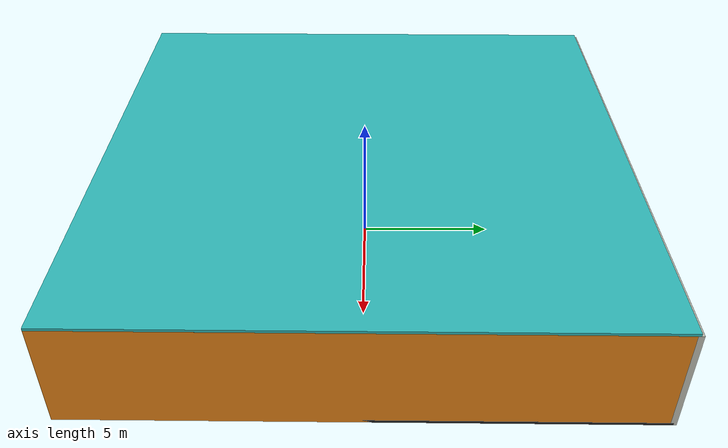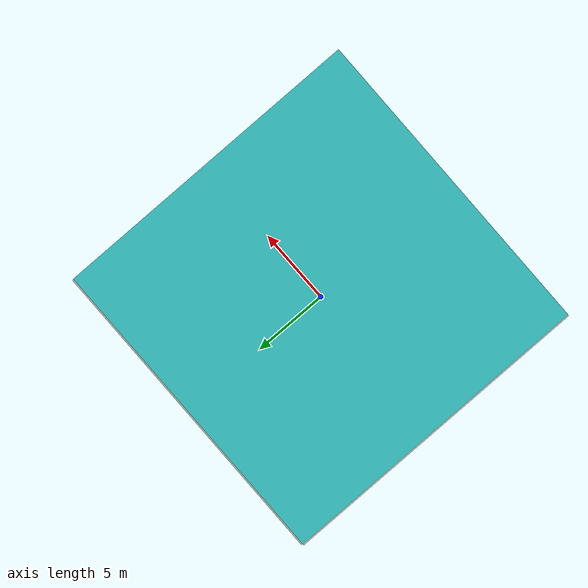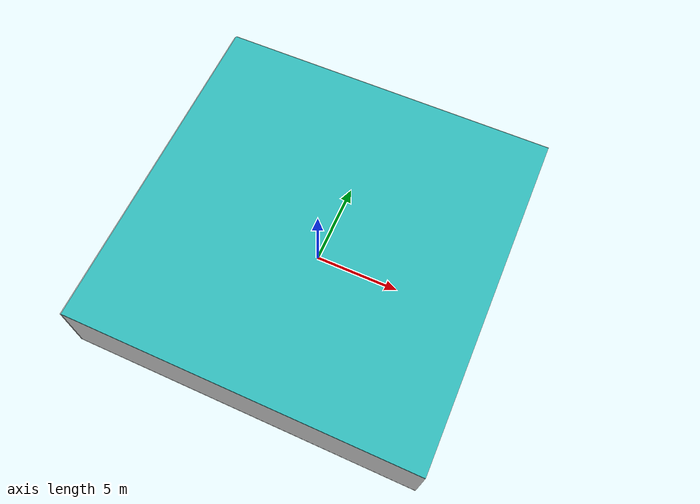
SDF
<sdf version="1.4">
 <world name="default">
  <physics type="ode">
   <max_step_size>0.001</max_step_size>
   <real_time_factor>1</real_time_factor>
   <real_time_update_rate>1000</real_time_update_rate>
   <gravity>0 0 -9.8</gravity>
  </physics>
  <scene><ambient>0.4 0.4 0.4 1</ambient><background>0.7 0.7 0.7 1</background><shadows>1</shadows></scene>
  <model name="Surrounding">
   <static>1</static>
   <link name="Ceiling">
    <collision name="Ceiling_Collision"><geometry><box><size>20 20 0.1</size></box></geometry></collision>
    <visual name="Ceiling_Visual">
     <geometry><box><size>20 20 0.1</size></box></geometry>
     <material>
      <script>
       <uri>file://media/materials/scripts/gazebo.material</uri>
       <name>Gazebo/TurquoiseGlowOutline</name>
      </script>
     </material>
    </visual>
    <pose>0 0 4.05 0 0 0</pose>
   </link>
   <link name="Wall_South">
    <collision name="Wall_South_Collision">
     <geometry><box><size>20 0 4</size></box></geometry>
     <pose>0 0 2 0 -0 0</pose>
    </collision>
    <visual name="Wall_South_Visual">
     <pose>0 0 2 0 -0 0</pose>
     <geometry><box><size>20 0 4</size></box></geometry>
     <material>
      <script><uri>file://media/materials/scripts/gazebo.material</uri><name>Gazebo/Pioneer2Body</name></script>
     </material>
    </visual>
    <velocity_decay><linear>0</linear><angular>0</angular></velocity_decay>
    <pose>0 -10 0 0 -0 0</pose>
   </link>
   <link name="Wall_East">
    <collision name="Wall_21_Collision">
     <geometry><box><size>20 0 4</size></box></geometry>
     <pose>0 0 2 0 -0 0</pose>
    </collision>
    <visual name="Wall_21_Visual">
     <pose>0 0 2 0 -0 0</pose>
     <geometry><box><size>20 0 4</size></box></geometry>
     <material>
      <script><uri>file://media/materials/scripts/gazebo.material</uri><name>Gazebo/Orange</name></script>
     </material>
    </visual>
    <velocity_decay><linear>0</linear><angular>0</angular></velocity_decay>
    <pose>10 0 0 0 -0 1.5708</pose>
   </link>
   <link name="Wall_North">
    <collision name="Wall_22_Collision">
     <geometry><box><size>20 0.2 4</size></box></geometry>
     <pose>0 0 2 0 -0 0</pose>
    </collision>
    <visual name="Wall_22_Visual">
     <pose>0 0 2 0 -0 0</pose>
     <geometry><box><size>20 0.2 4</size></box></geometry>
     <material>
      <script><uri>file://media/materials/scripts/gazebo.material</uri><name>Gazebo/PaintedWall</name></script>
     </material>
    </visual>
    <velocity_decay><linear>0</linear><angular>0</angular></velocity_decay>
    <pose>0 10 0 0 -0 0</pose>
   </link>
   <link name="Wall_West">
    <collision name="Wall_23_Collision">
     <geometry><box><size>20 0.2 4</size></box></geometry>
     <pose>0 0 2 0 -0 0</pose>
    </collision>
    <visual name="Wall_23_Visual">
     <pose>0 0 2 0 -0 0</pose>
     <geometry><box><size>20 0.2 4</size></box></geometry>
     <material>
      <script><uri>file://media/materials/scripts/gazebo.material</uri><name>Gazebo/Pioneer2Body</name></script>
     </material>
    </visual>
    <velocity_decay><linear>0</linear><angular>0</angular></velocity_decay>
    <pose>-10 0 0 0 0 -1.5708</pose>
   </link>
   <link name="Ground_link">
    <collision name="collision">
     <pose>0 0 .05 0 -0 0</pose>
     <geometry><box><size>20 20 0.1</size></box></geometry>
    </collision>
    <visual name="visual">
     <pose>0 0 .05 0 -0 0</pose>
     <geometry><box><size>20 20 0.1</size></box></geometry>
     <material>
      <script><uri>file://media/materials/scripts/gazebo.material</uri><name>Gazebo/FlatBlack</name></script>
     </material>
    </visual>
   </link>
   <static>1</static>
  </model>
  <spherical_coordinates>
   <surface_model>EARTH_WGS84</surface_model>
   <latitude_deg>0</latitude_deg>
   <longitude_deg>0</longitude_deg>
   <elevation>0</elevation>
   <heading_deg>0</heading_deg>
  </spherical_coordinates>
  <light name="lightball_0" type="diffuse">
   <diffuse>0.8 0.8 0.8 1</diffuse>
   <specular>0.2 0.2 0.2 1</specular>
   <attenuation>
    <range>100</range>
    <constant>0.7</constant>
    <linear>0.01</linear>
    <quadratic>0.001</quadratic>
   </attenuation>
   <direction>-0.5 0.1 -0.9</direction>
   <pose>-9.71646675159 0.525448798977 2.95556073763 0 0 0</pose>
  </light>
  <light name="lightball_1" type="diffuse">
   <diffuse>0.8 0.8 0.8 1</diffuse>
   <specular>0.2 0.2 0.2 1</specular>
   <attenuation>
    <range>100</range>
    <constant>0.7</constant>
    <linear>0.01</linear>
    <quadratic>0.001</quadratic>
   </attenuation>
   <direction>-0.5 0.1 -0.9</direction>
   <pose>9.50164242461 6.83840680239 3.1340298624 0 0 0</pose>
  </light>
  <light name="lightball_2" type="diffuse">
   <diffuse>0.8 0.8 0.8 1</diffuse>
   <specular>0.2 0.2 0.2 1</specular>
   <attenuation>
    <range>100</range>
    <constant>0.7</constant>
    <linear>0.01</linear>
    <quadratic>0.001</quadratic>
   </attenuation>
   <direction>-0.5 0.1 -0.9</direction>
   <pose>8.71798793544 -2.95993677237 1.70500948245 0 0 0</pose>
  </light>
  <light name="lightball_3" type="diffuse">
   <diffuse>0.8 0.8 0.8 1</diffuse>
   <specular>0.2 0.2 0.2 1</specular>
   <attenuation>
    <range>100</range>
    <constant>0.7</constant>
    <linear>0.01</linear>
    <quadratic>0.001</quadratic>
   </attenuation>
   <direction>-0.5 0.1 -0.9</direction>
   <pose>-3.46633447205 9.89292226545 2.30078203744 0 0 0</pose>
  </light>
  <light name="lightball_4" type="diffuse">
   <diffuse>0.8 0.8 0.8 1</diffuse>
   <specular>0.2 0.2 0.2 1</specular>
   <attenuation>
    <range>100</range>
    <constant>0.7</constant>
    <linear>0.01</linear>
    <quadratic>0.001</quadratic>
   </attenuation>
   <direction>-0.5 0.1 -0.9</direction>
   <pose>-8.81952442183 -7.32443198987 2.22842074116 0 0 0</pose>
  </light>
  <light name="lightball_5" type="diffuse">
   <diffuse>0.8 0.8 0.8 1</diffuse>
   <specular>0.2 0.2 0.2 1</specular>
   <attenuation>
    <range>100</range>
    <constant>0.7</constant>
    <linear>0.01</linear>
    <quadratic>0.001</quadratic>
   </attenuation>
   <direction>-0.5 0.1 -0.9</direction>
   <pose>8.64837911413 -6.9519295532 1.01509934038 0 0 0</pose>
  </light>
  <light name="lightball_6" type="diffuse">
   <diffuse>0.8 0.8 0.8 1</diffuse>
   <specular>0.2 0.2 0.2 1</specular>
   <attenuation>
    <range>100</range>
    <constant>0.7</constant>
    <linear>0.01</linear>
    <quadratic>0.001</quadratic>
   </attenuation>
   <direction>-0.5 0.1 -0.9</direction>
   <pose>-3.27585997014 -5.69365980459 1.23143479744 0 0 0</pose>
  </light>
  <light name="lightball_7" type="diffuse">
   <diffuse>0.8 0.8 0.8 1</diffuse>
   <specular>0.2 0.2 0.2 1</specular>
   <attenuation>
    <range>100</range>
    <constant>0.7</constant>
    <linear>0.01</linear>
    <quadratic>0.001</quadratic>
   </attenuation>
   <direction>-0.5 0.1 -0.9</direction>
   <pose>4.14996255546 -1.65331628748 2.34334604681 0 0 0</pose>
  </light>
  <light name="lightball_8" type="diffuse">
   <diffuse>0.8 0.8 0.8 1</diffuse>
   <specular>0.2 0.2 0.2 1</specular>
   <attenuation>
    <range>100</range>
    <constant>0.7</constant>
    <linear>0.01</linear>
    <quadratic>0.001</quadratic>
   </attenuation>
   <direction>-0.5 0.1 -0.9</direction>
   <pose>-7.29573425569 -1.40471187999 1.23340949737 0 0 0</pose>
  </light>
  <light name="lightball_9" type="diffuse">
   <diffuse>0.8 0.8 0.8 1</diffuse>
   <specular>0.2 0.2 0.2 1</specular>
   <attenuation>
    <range>100</range>
    <constant>0.7</constant>
    <linear>0.01</linear>
    <quadratic>0.001</quadratic>
   </attenuation>
   <direction>-0.5 0.1 -0.9</direction>
   <pose>-7.49761804406 2.36718477672 2.30354975541 0 0 0</pose>
  </light>
  <include>
   <uri>model://construction_cone</uri>
   <pose>-6.49010193401 -7.28253567646 0 0 0 2.73435486838</pose>
  </include>
  <include>
   <uri>model://textured_shapes</uri>
   <pose>-7.12681562009 2.12871489703 0 0 0 0.765961794954</pose>
  </include>
  <include>
   <uri>model://construction_cone</uri>
   <pose>-3.66906688461 -6.62943524281 0 0 0 1.49390884993</pose>
  </include>
  <include>
   <uri>model://robocup_3Dsim_goal</uri>
   <pose>-4.10848870299 -0.921890523716 0 0 0 1.66702726989</pose>
  </include>
  <include><uri>model://cabinet</uri><pose>2.66698790305 -3.5210437524 0 0 0 1.56949202331</pose></include>
  <include><uri>model://table</uri><pose>4.47560636435 2.09617843192 0 0 0 1.82342304536</pose></include>
 </world>
</sdf>

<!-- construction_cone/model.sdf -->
<sdf version="1.5">
  <model name="Construction Cone">
    <link name="link">
      <collision name="collision">
        <geometry>
          <mesh>
            <scale>10 10 10</scale>
            <uri>file://isr-testbed/construction_cone/meshes/construction_cone.dae</uri>
          </mesh>
        </geometry>
      </collision>
      <visual name="visual">
        <geometry>
          <mesh>
            <scale>10 10 10</scale>
            <uri>file://isr-testbed/construction_cone/meshes/construction_cone.dae</uri>
          </mesh>
        </geometry>
      </visual>
    </link>
  </model>
</sdf>

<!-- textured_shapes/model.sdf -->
<sdf version="1.6">
  <model name="textured_shapes">
    <pose>0 0 0.5 0 0 0</pose>
    <link name="box">
      <pose>0 -1.5 0 0 0 0</pose>
      <collision name="collision">
        <geometry>
          <box>
            <size>1 1 1</size>
          </box>
        </geometry>
      </collision>
      <visual name="visual">
        <geometry>
          <box>
            <size>1 1 1</size>
          </box>
        </geometry>
        <material>
          <script>
            <uri>model://../model_source/models/textured_shapes/materials/scripts</uri>
            <uri>model://../model_source/models/textured_shapes/materials/textures</uri>
            <name>TexturedShape/Squares</name>
          </script>
        </material>
      </visual>
    </link>
    <link name="sphere">
      <collision name="collision">
        <geometry>
          <sphere>
            <radius>0.5</radius>
          </sphere>
        </geometry>
      </collision>
      <visual name="visual">
        <geometry>
          <sphere>
            <radius>0.5</radius>
          </sphere>
        </geometry>
        <material>
          <script>
            <uri>model://../model_source/models/textured_shapes/materials/scripts</uri>
            <uri>model://../model_source/models/textured_shapes/materials/textures</uri>
            <name>TexturedShape/Squares</name>
          </script>
        </material>
      </visual>
    </link>
    <link name="cylinder">
      <pose>0 1.5 0 0 0 0</pose>
      <collision name="collision">
        <geometry>
          <cylinder>
            <radius>0.5</radius>
            <length>1</length>
          </cylinder>
        </geometry>
      </collision>
      <visual name="visual">
        <geometry>
          <cylinder>
            <radius>0.5</radius>
            <length>1</length>
          </cylinder>
        </geometry>
        <material>
          <script>
            <uri>model://../model_source/models/textured_shapes/materials/scripts</uri>
            <uri>model://../model_source/models/textured_shapes/materials/textures</uri>
            <name>TexturedShape/Squares</name>
          </script>
        </material>
      </visual>
    </link>
  </model>
</sdf>

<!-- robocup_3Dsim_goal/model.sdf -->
<sdf version="1.5">
  <model name="robocup_3d_goal">
    <static>true</static>
    <link name="left_post">
      <pose>0 1.05 0.45 0 0 0</pose>
      <collision name="collision">
        <geometry>
          <cylinder>
            <radius>0.05</radius>
            <length>0.9</length>
          </cylinder>
        </geometry>
      </collision>
      <visual name="visual">
        <geometry>
          <cylinder>
            <radius>0.05</radius>
            <length>0.9</length>
          </cylinder>
        </geometry>
        <material>
          <script>
            <uri>file://media/materials/scripts/gazebo.material</uri>
            <name>Gazebo/ZincYellow</name>
          </script>
        </material>
      </visual>
    </link>
    <link name="left_support_horiz_lower">
      <pose>0.30 1.05 0.01 0 0 0</pose>
      <collision name="collision">
        <geometry>
          <box>
            <size>0.50 0.02 0.02</size>
          </box>
        </geometry>
      </collision>
      <visual name="visual">
        <geometry>
          <box>
            <size>0.50 0.02 0.02</size>
          </box>
        </geometry>
        <material>
          <script>
            <uri>file://media/materials/scripts/gazebo.material</uri>
            <name>Gazebo/White</name>
          </script>
        </material>
      </visual>
    </link>
    <link name="left_support_horiz_upper">
      <pose>0.30 1.05 0.79 0 0 0</pose>
      <collision name="collision">
        <geometry>
          <box>
            <size>0.50 0.02 0.02</size>
          </box>
        </geometry>
      </collision>
      <visual name="visual">
        <geometry>
          <box>
            <size>0.50 0.02 0.02</size>
          </box>
        </geometry>
        <material>
          <script>
            <uri>file://media/materials/scripts/gazebo.material</uri>
            <name>Gazebo/White</name>
          </script>
        </material>
      </visual>
    </link>
    <link name="left_support_vertical">
      <pose>0.56 1.05 0.4 0 1.5708 0</pose>
      <collision name="collision">
        <geometry>
          <box>
            <size>0.80 0.02 0.02</size>
          </box>
        </geometry>
      </collision>
      <visual name="visual">
        <geometry>
          <box>
            <size>0.80 0.02 0.02</size>
          </box>
        </geometry>
        <material>
          <script>
            <uri>file://media/materials/scripts/gazebo.material</uri>
            <name>Gazebo/White</name>
          </script>
        </material>
      </visual>
    </link>
    <link name="right_support_horiz_lower">
      <pose>0.30 -1.05 0.01 0 0 0</pose>
      <collision name="collision">
        <geometry>
          <box>
            <size>0.50 0.02 0.02</size>
          </box>
        </geometry>
      </collision>
      <visual name="visual">
        <geometry>
          <box>
            <size>0.50 0.02 0.02</size>
          </box>
        </geometry>
        <material>
          <script>
            <uri>file://media/materials/scripts/gazebo.material</uri>
            <name>Gazebo/White</name>
          </script>
        </material>
      </visual>
    </link>
    <link name="right_support_horiz_upper">
      <pose>0.30 -1.05 0.79 0 0 0</pose>
      <collision name="collision">
        <geometry>
          <box>
            <size>0.50 0.02 0.02</size>
          </box>
        </geometry>
      </collision>
      <visual name="visual">
        <geometry>
          <box>
            <size>0.50 0.02 0.02</size>
          </box>
        </geometry>
        <material>
          <script>
            <uri>file://media/materials/scripts/gazebo.material</uri>
            <name>Gazebo/White</name>
          </script>
        </material>
      </visual>
    </link>
    <link name="right_support_vertical">
      <pose>0.56 -1.05 0.4 0 1.5708 0</pose>
      <collision name="collision">
        <geometry>
          <box>
            <size>0.80 0.02 0.02</size>
          </box>
        </geometry>
      </collision>
      <visual name="visual">
        <geometry>
          <box>
            <size>0.80 0.02 0.02</size>
          </box>
        </geometry>
        <material>
          <script>
            <uri>file://media/materials/scripts/gazebo.material</uri>
            <name>Gazebo/White</name>
          </script>
        </material>
      </visual>
    </link>
    <link name="center_support_horiz_lower">
      <pose>0.56 0 0.01 0 1.5708 0</pose>
      <collision name="collision">
        <geometry>
          <box>
            <size>0.02 2.08 0.02</size>
          </box>
        </geometry>
      </collision>
      <visual name="visual">
        <geometry>
          <box>
            <size>0.02 2.08 0.02</size>
          </box>
        </geometry>
        <material>
          <script>
            <uri>file://media/materials/scripts/gazebo.material</uri>
            <name>Gazebo/White</name>
          </script>
        </material>
      </visual>
    </link>
    <link name="center_support_horiz_upper">
      <pose>0.56 0 0.79 0 1.5708 0</pose>
      <collision name="collision">
        <geometry>
          <box>
            <size>0.02 2.08 0.02</size>
          </box>
        </geometry>
      </collision>
      <visual name="visual">
        <geometry>
          <box>
            <size>0.02 2.08 0.02</size>
          </box>
        </geometry>
        <material>
          <script>
            <uri>file://media/materials/scripts/gazebo.material</uri>
            <name>Gazebo/White</name>
          </script>
        </material>
      </visual>
    </link>
    <link name="right_post">
      <pose>0 -1.05 0.45 0 0 0</pose>
      <collision name="collision">
        <geometry>
          <cylinder>
            <radius>0.05</radius>
            <length>0.9</length>
          </cylinder>
        </geometry>
      </collision>
      <visual name="visual">
        <geometry>
          <cylinder>
            <radius>0.05</radius>
            <length>0.9</length>
          </cylinder>
        </geometry>
        <material>
          <script>
            <uri>file://media/materials/scripts/gazebo.material</uri>
            <name>Gazebo/ZincYellow</name>
          </script>
        </material>
      </visual>
    </link>
    <link name="crossbar">
      <pose>0 0 0.85 1.57 1.57 0</pose>
      <collision name="collision">
        <geometry>
          <cylinder>
            <radius>0.05</radius>
            <length>2.0</length>
          </cylinder>
        </geometry>
      </collision>
      <visual name="visual">
        <geometry>
          <cylinder>
            <radius>0.05</radius>
            <length>2.0</length>
          </cylinder>
        </geometry>
        <material>
          <script>
            <uri>file://media/materials/scripts/gazebo.material</uri>
            <name>Gazebo/ZincYellow</name>
          </script>
        </material>
      </visual>
    </link>
    <link name="center_net">
      <pose>0.56 0 0.40 0 0 0</pose>
      <collision name="collision">
        <geometry>
          <box>
            <size>0.01 2.1 0.80</size>
          </box>
        </geometry>
      </collision>
      <visual name="visual">
        <geometry>
          <box>
            <size>0.01 2.1 0.80</size>
          </box>
        </geometry>
        <material>
          <script>
            <uri>model://../model_source/models/robocup09_spl_field/materials/scripts/</uri>
            <uri>model://../model_source/models/robocup09_spl_field/materials/textures/</uri>
            <name>RoboCup/Net</name>
          </script>
        </material>
      </visual>
    </link>
    <link name="left_net">
      <pose>0.30 1.05 0.40 0 0 0</pose>
      <collision name="collision">
        <geometry>
          <box>
            <size>0.50 0.01 0.76</size>
          </box>
        </geometry>
      </collision>
      <visual name="visual">
        <geometry>
          <box>
            <size>0.50 0.01 0.76</size>
          </box>
        </geometry>
        <material>
          <script>
            <uri>model://../model_source/models/robocup09_spl_field/materials/scripts/</uri>
            <uri>model://../model_source/models/robocup09_spl_field/materials/textures/</uri>
            <name>RoboCup/Net</name>
          </script>
        </material>
      </visual>
    </link>
    <link name="right_net">
      <pose>0.30 -1.05 0.40 0 0 0</pose>
      <collision name="collision">
        <geometry>
          <box>
            <size>0.50 0.01 0.76</size>
          </box>
        </geometry>
      </collision>
      <visual name="visual">
        <geometry>
          <box>
            <size>0.50 0.01 0.76</size>
          </box>
        </geometry>
        <material>
          <script>
            <uri>model://../model_source/models/robocup09_spl_field/materials/scripts/</uri>
            <uri>model://../model_source/models/robocup09_spl_field/materials/textures/</uri>
            <name>RoboCup/Net</name>
          </script>
        </material>
      </visual>
    </link>
  </model>
</sdf>

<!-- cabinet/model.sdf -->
<sdf version="1.5">
  <model name="cabinet">
    <static>true</static>
    <link name="cabinet_bottom_plate">
      <inertial>
        <pose>0 0 -1 0 0 0</pose>
        <inertia>
          <ixx>2.050000</ixx>
          <ixy>0</ixy>
          <ixz>0</ixz>
          <iyy>2.050000</iyy>
          <iyz>0</iyz>
          <izz>2.050000</izz>
        </inertia>
        <mass>25.000000</mass>
      </inertial>
      <collision name="cabinet_bottom_plate_geom">
        <pose>0 0 0.010000 0 0 0</pose>
        <geometry>
          <box>
            <size>0.450000 0.450000 0.020000</size>
          </box>
        </geometry>
      </collision>
      <visual name="cabinet_bottom_plate_geom_visual">
        <pose>0 0 0.010000 0 0 0</pose>
        <geometry>
          <box>
            <size>0.450000 0.450000 0.020000</size>
          </box>
        </geometry>
        <material>
          <script>
            <uri>model://media/materials/scripts/gazebo.material</uri>
            <name>Gazebo/Wood</name>
          </script>
        </material>
      </visual>
      <collision name="cabinet_bottom_plate_geom_cabinet_back_plate">
        <pose>0.235000 0 0.510000 0 0 0</pose>
        <geometry>
          <box>
            <size>0.020000 0.450000 1.020000</size>
          </box>
        </geometry>
      </collision>
      <visual name="cabinet_bottom_plate_geom_cabinet_back_plate_visual">
        <pose>0.235000 0 0.510000 0 0 0</pose>
        <geometry>
          <box>
            <size>0.020000 0.450000 1.020000</size>
          </box>
        </geometry>
        <material>
          <script>
            <uri>model://media/materials/scripts/gazebo.material</uri>
            <name>Gazebo/Wood</name>
          </script>
        </material>
      </visual>
      <collision name="cabinet_bottom_plate_geom_cabinet_left_plate">
        <pose>0 0.235000 0.510000 0 0 0</pose>
        <geometry>
          <box>
            <size>0.450000 0.020000 1.020000</size>
          </box>
        </geometry>
      </collision>
      <visual name="cabinet_bottom_plate_geom_cabinet_left_plate_visual">
        <pose>0 0.235000 0.510000 0 0 0</pose>
        <geometry>
          <box>
            <size>0.450000 0.020000 1.020000</size>
          </box>
        </geometry>
        <material>
          <script>
            <uri>model://media/materials/scripts/gazebo.material</uri>
            <name>Gazebo/Wood</name>
          </script>
        </material>
      </visual>
      <collision name="cabinet_bottom_plate_geom_cabinet_middle_plate">
        <pose>0 0 0.510000 0 0 0</pose>
        <geometry>
          <box>
            <size>0.450000 0.450000 0.020000</size>
          </box>
        </geometry>
      </collision>
      <visual name="cabinet_bottom_plate_geom_cabinet_middle_plate_visual">
        <pose>0 0 0.510000 0 0 0</pose>
        <geometry>
          <box>
            <size>0.450000 0.450000 0.020000</size>
          </box>
        </geometry>
        <material>
          <script>
            <uri>model://media/materials/scripts/gazebo.material</uri>
            <name>Gazebo/Wood</name>
          </script>
        </material>
      </visual>
      <collision name="cabinet_bottom_plate_geom_cabinet_right_plate">
        <pose>0 -0.235000 0.510000 0 0 0</pose>
        <geometry>
          <box>
            <size>0.450000 0.020000 1.020000</size>
          </box>
        </geometry>
      </collision>
      <visual name="cabinet_bottom_plate_geom_cabinet_right_plate_visual">
        <pose>0 -0.235000 0.510000 0 0 0</pose>
        <geometry>
          <box>
            <size>0.450000 0.020000 1.020000</size>
          </box>
        </geometry>
        <material>
          <script>
            <uri>model://media/materials/scripts/gazebo.material</uri>
            <name>Gazebo/Wood</name>
          </script>
        </material>
      </visual>
      <collision name="cabinet_bottom_plate_geom_cabinet_top_plate">
        <pose>0 0 1.010000 0 0 0</pose>
        <geometry>
          <box>
            <size>0.450000 0.450000 0.020000</size>
          </box>
        </geometry>
      </collision>
      <visual name="cabinet_bottom_plate_geom_cabinet_top_plate_visual">
        <pose>0 0 1.010000 0 0 0</pose>
        <geometry>
          <box>
            <size>0.450000 0.450000 0.020000</size>
          </box>
        </geometry>
        <material>
          <script>
            <uri>model://media/materials/scripts/gazebo.material</uri>
            <name>Gazebo/Wood</name>
          </script>
        </material>
      </visual>
    </link>
  </model>
</sdf>

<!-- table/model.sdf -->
<sdf version="1.5">
  <model name="table">
    <static>true</static>
    <link name="link">
      <collision name="surface">
        <pose>0 0 1.0 0 0 0</pose>
        <geometry>
          <box>
            <size>1.5 0.8 0.03</size>
          </box>
        </geometry>
        <surface>
          <friction>
            <ode>
              <mu>0.6</mu>
              <mu2>0.6</mu2>
            </ode>
          </friction>
        </surface>
      </collision>
      <visual name="visual1">
        <pose>0 0 1.0 0 0 0</pose>
        <geometry>
          <box>
            <size>1.5 0.8 0.03</size>
          </box>
        </geometry>
        <material>
          <script>
            <uri>model://media/materials/scripts/gazebo.material</uri>
            <name>Gazebo/Wood</name>
          </script>
        </material>
      </visual>
      <collision name="front_left_leg">
        <pose>0.68 0.38 0.5 0 0 0</pose>
        <geometry>
          <cylinder>
            <radius>0.02</radius>
            <length>1.0</length>
          </cylinder>
        </geometry>
      </collision>
      <visual name="front_left_leg">
        <pose>0.68 0.38 0.5 0 0 0</pose>
        <geometry>
          <cylinder>
            <radius>0.02</radius>
            <length>1.0</length>
          </cylinder>
        </geometry>
        <material>
          <script>
            <uri>model://media/materials/scripts/gazebo.material</uri>
            <name>Gazebo/Grey</name>
          </script>
        </material>
      </visual>
      <collision name="front_right_leg">
        <pose>0.68 -0.38 0.5 0 0 0</pose>
        <geometry>
          <cylinder>
            <radius>0.02</radius>
            <length>1.0</length>
          </cylinder>
        </geometry>
      </collision>
      <visual name="front_right_leg">
        <pose>0.68 -0.38 0.5 0 0 0</pose>
        <geometry>
          <cylinder>
            <radius>0.02</radius>
            <length>1.0</length>
          </cylinder>
        </geometry>
        <material>
          <script>
            <uri>model://media/materials/scripts/gazebo.material</uri>
            <name>Gazebo/Grey</name>
          </script>
        </material>
      </visual>
      <collision name="back_right_leg">
        <pose>-0.68 -0.38 0.5 0 0 0</pose>
        <geometry>
          <cylinder>
            <radius>0.02</radius>
            <length>1.0</length>
          </cylinder>
        </geometry>
      </collision>
      <visual name="back_right_leg">
        <pose>-0.68 -0.38 0.5 0 0 0</pose>
        <geometry>
          <cylinder>
            <radius>0.02</radius>
            <length>1.0</length>
          </cylinder>
        </geometry>
        <material>
          <script>
            <uri>model://media/materials/scripts/gazebo.material</uri>
            <name>Gazebo/Grey</name>
          </script>
        </material>
      </visual>
      <collision name="back_left_leg">
        <pose>-0.68 0.38 0.5 0 0 0</pose>
        <geometry>
          <cylinder>
            <radius>0.02</radius>
            <length>1.0</length>
          </cylinder>
        </geometry>
      </collision>
      <visual name="back_left_leg">
        <pose>-0.68 0.38 0.5 0 0 0</pose>
        <geometry>
          <cylinder>
            <radius>0.02</radius>
            <length>1.0</length>
          </cylinder>
        </geometry>
        <material>
          <script>
            <uri>model://media/materials/scripts/gazebo.material</uri>
            <name>Gazebo/Grey</name>
          </script>
        </material>
      </visual>
    </link>
  </model>
</sdf>
